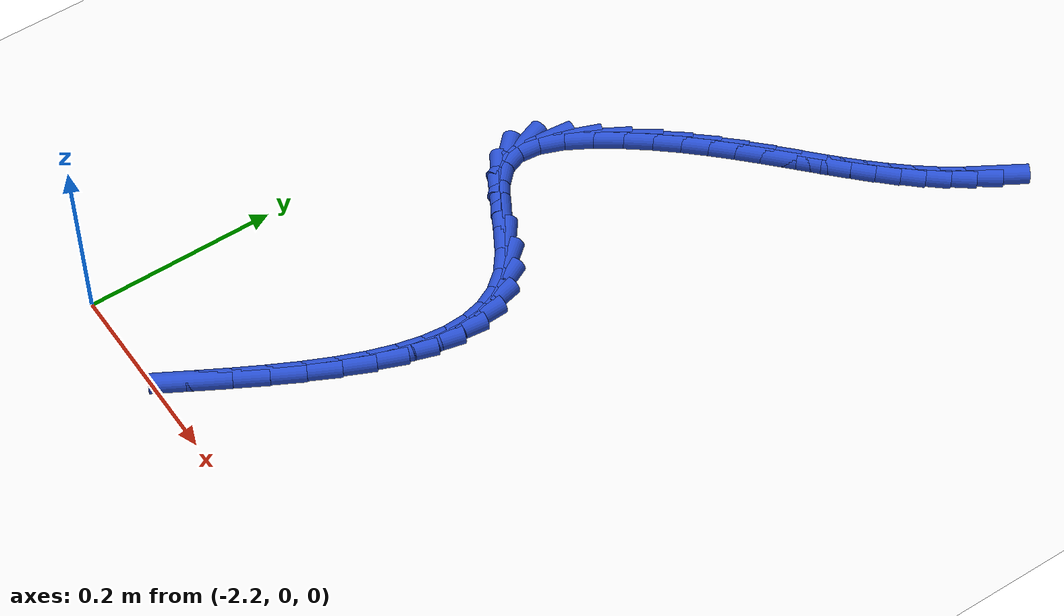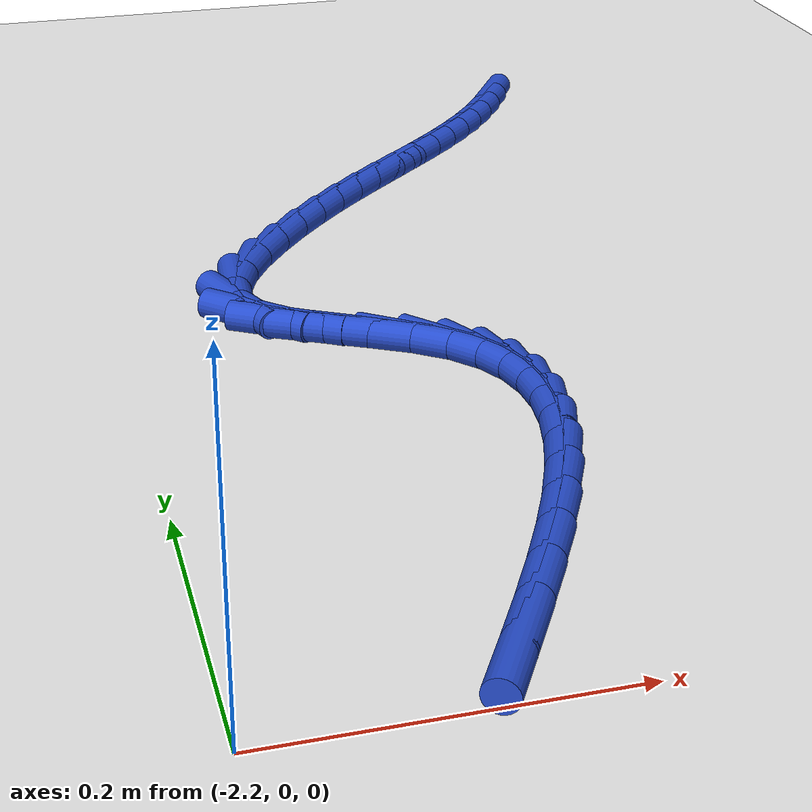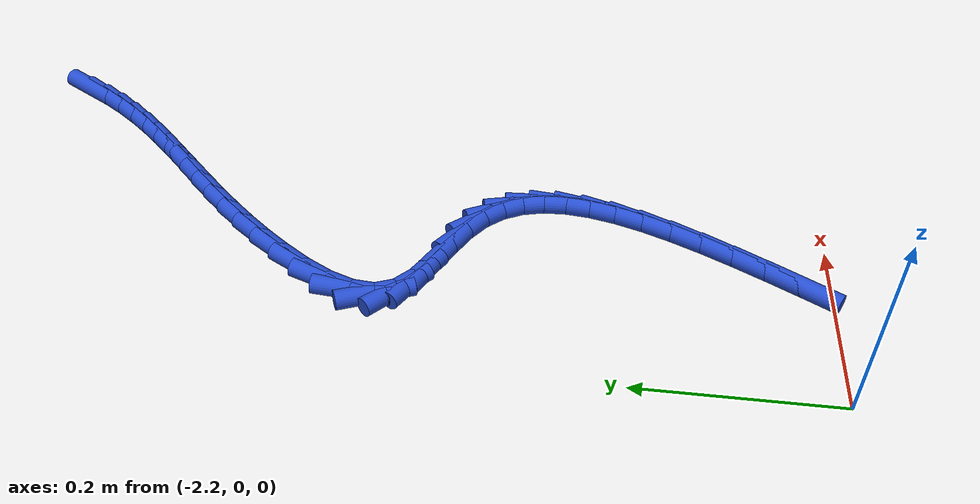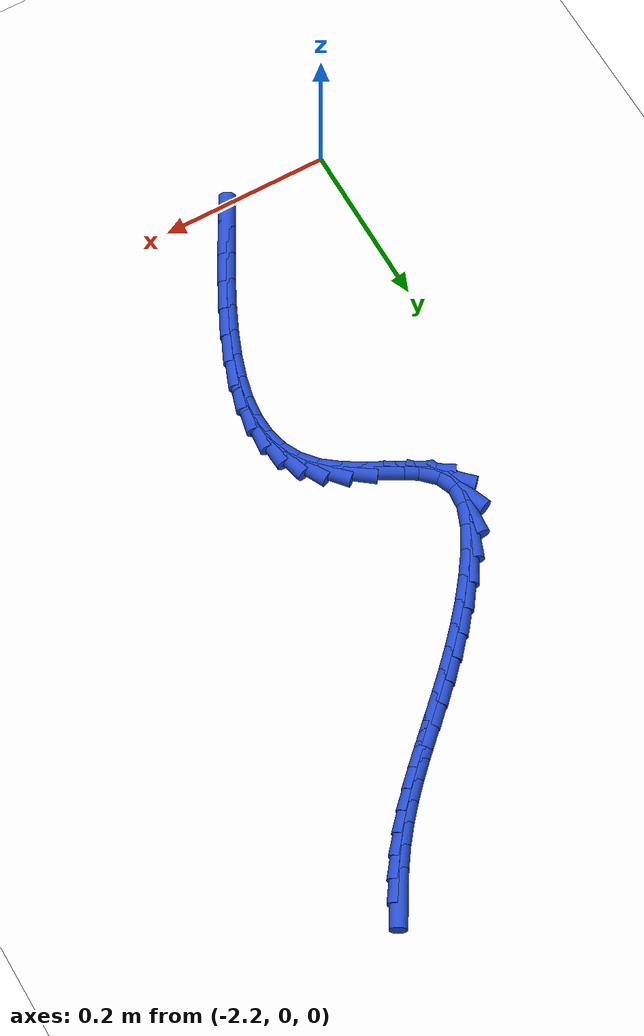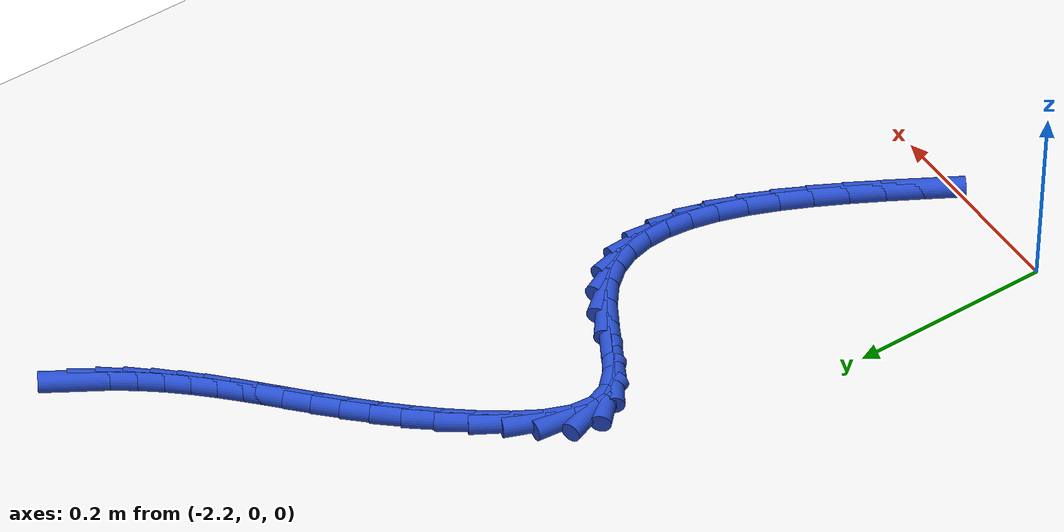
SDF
<sdf version="1.6">
 <world name="default">
  <model name="ground_plane">
   <static>1</static>
   <link name="link">
    <collision name="collision">
     <geometry><plane><normal>0 0 1</normal><size>100 100</size></plane></geometry>
     <surface><friction><ode><mu>100</mu><mu2>50</mu2></ode></friction></surface>
    </collision>
    <visual name="visual">
     <cast_shadows>0</cast_shadows>
     <geometry><plane><normal>0 0 1</normal><size>100 100</size></plane></geometry>
     <material>
      <script><uri>file://media/materials/scripts/gazebo.material</uri><name>Gazebo/WhiteGlow</name></script>
     </material>
    </visual>
   </link>
  </model>
  <model name="line">
   <link name="link_108">
    <pose>-1.8316565989515088 0.8165789625388601 0.01 0 1.57 1.0314010881256435</pose>
    <collision name="collision">
     <geometry><cylinder><radius>0.01</radius><length>0.08</length></cylinder></geometry>
    </collision>
    <visual name="visual">
     <material>
      <script><name>Gazebo/Blue</name><uri>file://media/materials/scripts/gazebo.material</uri></script>
     </material>
     <geometry><cylinder><radius>0.01</radius><length>0.08</length></cylinder></geometry>
    </visual>
   </link>
   <link name="link_109">
    <pose>-1.8453071118766358 0.7937751975808975 0.01 0 1.57 0.9664999247750493</pose>
    <collision name="collision">
     <geometry><cylinder><radius>0.01</radius><length>0.08</length></cylinder></geometry>
    </collision>
    <visual name="visual">
     <material>
      <script><name>Gazebo/Blue</name><uri>file://media/materials/scripts/gazebo.material</uri></script>
     </material>
     <geometry><cylinder><radius>0.01</radius><length>0.08</length></cylinder></geometry>
    </visual>
   </link>
   <link name="link_110">
    <pose>-1.8599519620373803 0.7725650015657354 0.01 0 1.57 0.9077729633526451</pose>
    <collision name="collision">
     <geometry><cylinder><radius>0.01</radius><length>0.08</length></cylinder></geometry>
    </collision>
    <visual name="visual">
     <material>
      <script><name>Gazebo/Blue</name><uri>file://media/materials/scripts/gazebo.material</uri></script>
     </material>
     <geometry><cylinder><radius>0.01</radius><length>0.08</length></cylinder></geometry>
    </visual>
   </link>
   <link name="link_111">
    <pose>-1.8754871113538873 0.7526726461141595 0.01 0 1.57 0.8571743927361047</pose>
    <collision name="collision">
     <geometry><cylinder><radius>0.01</radius><length>0.08</length></cylinder></geometry>
    </collision>
    <visual name="visual">
     <material>
      <script><name>Gazebo/Blue</name><uri>file://media/materials/scripts/gazebo.material</uri></script>
     </material>
     <geometry><cylinder><radius>0.01</radius><length>0.08</length></cylinder></geometry>
    </visual>
   </link>
   <link name="link_112">
    <pose>-1.8918085217462997 0.7338224028469552 0.01 0 1.57 0.8161750840079137</pose>
    <collision name="collision">
     <geometry><cylinder><radius>0.01</radius><length>0.08</length></cylinder></geometry>
    </collision>
    <visual name="visual">
     <material>
      <script><name>Gazebo/Blue</name><uri>file://media/materials/scripts/gazebo.material</uri></script>
     </material>
     <geometry><cylinder><radius>0.01</radius><length>0.08</length></cylinder></geometry>
    </visual>
   </link>
   <link name="link_113">
    <pose>-1.9088121551347625 0.7157385433849085 0.01 0 1.57 0.785721851352477</pose>
    <collision name="collision">
     <geometry><cylinder><radius>0.01</radius><length>0.08</length></cylinder></geometry>
    </collision>
    <visual name="visual">
     <material>
      <script><name>Gazebo/Blue</name><uri>file://media/materials/scripts/gazebo.material</uri></script>
     </material>
     <geometry><cylinder><radius>0.01</radius><length>0.08</length></cylinder></geometry>
    </visual>
   </link>
   <link name="link_114">
    <pose>-1.9263939734394189 0.698145339348805 0.01 0 1.57 0.7662752613122424</pose>
    <collision name="collision">
     <geometry><cylinder><radius>0.01</radius><length>0.08</length></cylinder></geometry>
    </collision>
    <visual name="visual">
     <material>
      <script><name>Gazebo/Blue</name><uri>file://media/materials/scripts/gazebo.material</uri></script>
     </material>
     <geometry><cylinder><radius>0.01</radius><length>0.08</length></cylinder></geometry>
    </visual>
   </link>
   <link name="link_115">
    <pose>-1.944449938580414 0.6807670623594304 0.01 0 1.57 0.7578854813838091</pose>
    <collision name="collision">
     <geometry><cylinder><radius>0.01</radius><length>0.08</length></cylinder></geometry>
    </collision>
    <visual name="visual">
     <material>
      <script><name>Gazebo/Blue</name><uri>file://media/materials/scripts/gazebo.material</uri></script>
     </material>
     <geometry><cylinder><radius>0.01</radius><length>0.08</length></cylinder></geometry>
    </visual>
   </link>
   <link name="link_116">
    <pose>-1.962876012477891 0.6633279840375703 0.01 0 1.57 0.760270658434729</pose>
    <collision name="collision">
     <geometry><cylinder><radius>0.01</radius><length>0.08</length></cylinder></geometry>
    </collision>
    <visual name="visual">
     <material>
      <script><name>Gazebo/Blue</name><uri>file://media/materials/scripts/gazebo.material</uri></script>
     </material>
     <geometry><cylinder><radius>0.01</radius><length>0.08</length></cylinder></geometry>
    </visual>
   </link>
   <link name="link_117">
    <pose>-1.9815681570519943 0.6455523760040108 0.01 0 1.57 0.772877725785321</pose>
    <collision name="collision">
     <geometry><cylinder><radius>0.01</radius><length>0.08</length></cylinder></geometry>
    </collision>
    <visual name="visual">
     <material>
      <script><name>Gazebo/Blue</name><uri>file://media/materials/scripts/gazebo.material</uri></script>
     </material>
     <geometry><cylinder><radius>0.01</radius><length>0.08</length></cylinder></geometry>
    </visual>
   </link>
   <link name="link_118">
    <pose>-2.000422334222868 0.627164509879537 0.01 0 1.57 0.7949213036876996</pose>
    <collision name="collision">
     <geometry><cylinder><radius>0.01</radius><length>0.08</length></cylinder></geometry>
    </collision>
    <visual name="visual">
     <material>
      <script><name>Gazebo/Blue</name><uri>file://media/materials/scripts/gazebo.material</uri></script>
     </material>
     <geometry><cylinder><radius>0.01</radius><length>0.08</length></cylinder></geometry>
    </visual>
   </link>
   <link name="link_119">
    <pose>-2.0193345059106567 0.6078886572849349 0.01 0 1.57 0.825407623657869</pose>
    <collision name="collision">
     <geometry><cylinder><radius>0.01</radius><length>0.08</length></cylinder></geometry>
    </collision>
    <visual name="visual">
     <material>
      <script><name>Gazebo/Blue</name><uri>file://media/materials/scripts/gazebo.material</uri></script>
     </material>
     <geometry><cylinder><radius>0.01</radius><length>0.08</length></cylinder></geometry>
    </visual>
   </link>
   <link name="link_120">
    <pose>-2.0382006340355034 0.5874490898409898 0.01 0 1.57 0.8631560754365122</pose>
    <collision name="collision">
     <geometry><cylinder><radius>0.01</radius><length>0.08</length></cylinder></geometry>
    </collision>
    <visual name="visual">
     <material>
      <script><name>Gazebo/Blue</name><uri>file://media/materials/scripts/gazebo.material</uri></script>
     </material>
     <geometry><cylinder><radius>0.01</radius><length>0.08</length></cylinder></geometry>
    </visual>
   </link>
   <link name="link_121">
    <pose>-2.0569166805175527 0.5655700791684878 0.01 0 1.57 0.9068319498530805</pose>
    <collision name="collision">
     <geometry><cylinder><radius>0.01</radius><length>0.08</length></cylinder></geometry>
    </collision>
    <visual name="visual">
     <material>
      <script><name>Gazebo/Blue</name><uri>file://media/materials/scripts/gazebo.material</uri></script>
     </material>
     <geometry><cylinder><radius>0.01</radius><length>0.08</length></cylinder></geometry>
    </visual>
   </link>
   <link name="link_122">
    <pose>-2.0753785501475672 0.5419759368120254 0.01 0 1.57 0.9609091247027255</pose>
    <collision name="collision">
     <geometry><cylinder><radius>0.01</radius><length>0.08</length></cylinder></geometry>
    </collision>
    <visual name="visual">
     <material>
      <script><name>Gazebo/Blue</name><uri>file://media/materials/scripts/gazebo.material</uri></script>
     </material>
     <geometry><cylinder><radius>0.01</radius><length>0.08</length></cylinder></geometry>
    </visual>
   </link>
   <link name="link_123">
    <pose>-2.0930403183587614 0.5166997385857761 0.01 0 1.57 1.0509319826366028</pose>
    <collision name="collision">
     <geometry><cylinder><radius>0.01</radius><length>0.08</length></cylinder></geometry>
    </collision>
    <visual name="visual">
     <material>
      <script><name>Gazebo/Blue</name><uri>file://media/materials/scripts/gazebo.material</uri></script>
     </material>
     <geometry><cylinder><radius>0.01</radius><length>0.08</length></cylinder></geometry>
    </visual>
   </link>
   <link name="link_124">
    <pose>-2.1078489605845268 0.4908277692468538 0.01 0 1.57 1.2068945272847194</pose>
    <collision name="collision">
     <geometry><cylinder><radius>0.01</radius><length>0.08</length></cylinder></geometry>
    </collision>
    <visual name="visual">
     <material>
      <script><name>Gazebo/Blue</name><uri>file://media/materials/scripts/gazebo.material</uri></script>
     </material>
     <geometry><cylinder><radius>0.01</radius><length>0.08</length></cylinder></geometry>
    </visual>
   </link>
   <link name="link_125">
    <pose>-2.117430390281946 0.4656706817726154 0.01 0 1.57 1.4854014942318956</pose>
    <collision name="collision">
     <geometry><cylinder><radius>0.01</radius><length>0.08</length></cylinder></geometry>
    </collision>
    <visual name="visual">
     <material>
      <script><name>Gazebo/Blue</name><uri>file://media/materials/scripts/gazebo.material</uri></script>
     </material>
     <geometry><cylinder><radius>0.01</radius><length>0.08</length></cylinder></geometry>
    </visual>
   </link>
   <link name="link_126">
    <pose>-2.1194105209081004 0.4425391291404194 0.01 0 1.57 -1.1946430958769252</pose>
    <collision name="collision">
     <geometry><cylinder><radius>0.01</radius><length>0.08</length></cylinder></geometry>
    </collision>
    <visual name="visual">
     <material>
      <script><name>Gazebo/Blue</name><uri>file://media/materials/scripts/gazebo.material</uri></script>
     </material>
     <geometry><cylinder><radius>0.01</radius><length>0.08</length></cylinder></geometry>
    </visual>
   </link>
   <link name="link_127">
    <pose>-2.111565539374166 0.4226763595229945 0.01 0 1.57 -0.7741351821345922</pose>
    <collision name="collision">
     <geometry><cylinder><radius>0.01</radius><length>0.08</length></cylinder></geometry>
    </collision>
    <visual name="visual">
     <material>
      <script><name>Gazebo/Blue</name><uri>file://media/materials/scripts/gazebo.material</uri></script>
     </material>
     <geometry><cylinder><radius>0.01</radius><length>0.08</length></cylinder></geometry>
    </visual>
   </link>
   <link name="link_128">
    <pose>-2.094546268368621 0.40603620997175344 0.01 0 1.57 -0.5671346820856457</pose>
    <collision name="collision">
     <geometry><cylinder><radius>0.01</radius><length>0.08</length></cylinder></geometry>
    </collision>
    <visual name="visual">
     <material>
      <script><name>Gazebo/Blue</name><uri>file://media/materials/scripts/gazebo.material</uri></script>
     </material>
     <geometry><cylinder><radius>0.01</radius><length>0.08</length></cylinder></geometry>
    </visual>
   </link>
   <link name="link_129">
    <pose>-2.0715879436484395 0.39141328513068413 0.01 0 1.57 -0.4964799119340013</pose>
    <collision name="collision">
     <geometry><cylinder><radius>0.01</radius><length>0.08</length></cylinder></geometry>
    </collision>
    <visual name="visual">
     <material>
      <script><name>Gazebo/Blue</name><uri>file://media/materials/scripts/gazebo.material</uri></script>
     </material>
     <geometry><cylinder><radius>0.01</radius><length>0.08</length></cylinder></geometry>
    </visual>
   </link>
   <link name="link_130">
    <pose>-2.0460178237048305 0.37756091306262524 0.01 0 1.57 -0.5229542454959518</pose>
    <collision name="collision">
     <geometry><cylinder><radius>0.01</radius><length>0.08</length></cylinder></geometry>
    </collision>
    <visual name="visual">
     <material>
      <script><name>Gazebo/Blue</name><uri>file://media/materials/scripts/gazebo.material</uri></script>
     </material>
     <geometry><cylinder><radius>0.01</radius><length>0.08</length></cylinder></geometry>
    </visual>
   </link>
   <link name="link_131">
    <pose>-2.021163167029001 0.3632324218304154 0.01 0 1.57 -0.6546857424450896</pose>
    <collision name="collision">
     <geometry><cylinder><radius>0.01</radius><length>0.08</length></cylinder></geometry>
    </collision>
    <visual name="visual">
     <material>
      <script><name>Gazebo/Blue</name><uri>file://media/materials/scripts/gazebo.material</uri></script>
     </material>
     <geometry><cylinder><radius>0.01</radius><length>0.08</length></cylinder></geometry>
    </visual>
   </link>
   <link name="link_132">
    <pose>-2.0002854931750567 0.34720620645195166 0.01 0 1.57 -0.8716137062872118</pose>
    <collision name="collision">
     <geometry><cylinder><radius>0.01</radius><length>0.08</length></cylinder></geometry>
    </collision>
    <visual name="visual">
     <material>
      <script><name>Gazebo/Blue</name><uri>file://media/materials/scripts/gazebo.material</uri></script>
     </material>
     <geometry><cylinder><radius>0.01</radius><length>0.08</length></cylinder></geometry>
    </visual>
   </link>
   <link name="link_133">
    <pose>-1.9849108110132525 0.3289224306051084 0.01 0 1.57 -1.1063197440170132</pose>
    <collision name="collision">
     <geometry><cylinder><radius>0.01</radius><length>0.08</length></cylinder></geometry>
    </collision>
    <visual name="visual">
     <material>
      <script><name>Gazebo/Blue</name><uri>file://media/materials/scripts/gazebo.material</uri></script>
     </material>
     <geometry><cylinder><radius>0.01</radius><length>0.08</length></cylinder></geometry>
    </visual>
   </link>
   <link name="link_134">
    <pose>-1.9746955369743215 0.30853415342551654 0.01 0 1.57 -1.3293674857315725</pose>
    <collision name="collision">
     <geometry><cylinder><radius>0.01</radius><length>0.08</length></cylinder></geometry>
    </collision>
    <visual name="visual">
     <material>
      <script><name>Gazebo/Blue</name><uri>file://media/materials/scripts/gazebo.material</uri></script>
     </material>
     <geometry><cylinder><radius>0.01</radius><length>0.08</length></cylinder></geometry>
    </visual>
   </link>
   <link name="link_135">
    <pose>-1.969203485636256 0.2862297441189611 0.01 0 1.57 -1.5206965817446931</pose>
    <collision name="collision">
     <geometry><cylinder><radius>0.01</radius><length>0.08</length></cylinder></geometry>
    </collision>
    <visual name="visual">
     <material>
      <script><name>Gazebo/Blue</name><uri>file://media/materials/scripts/gazebo.material</uri></script>
     </material>
     <geometry><cylinder><radius>0.01</radius><length>0.08</length></cylinder></geometry>
    </visual>
   </link>
   <link name="link_136">
    <pose>-1.967998471577049 0.26219757189122705 0.01 0 1.57 1.4676952412201076</pose>
    <collision name="collision">
     <geometry><cylinder><radius>0.01</radius><length>0.08</length></cylinder></geometry>
    </collision>
    <visual name="visual">
     <material>
      <script><name>Gazebo/Blue</name><uri>file://media/materials/scripts/gazebo.material</uri></script>
     </material>
     <geometry><cylinder><radius>0.01</radius><length>0.08</length></cylinder></geometry>
    </visual>
   </link>
   <link name="link_137">
    <pose>-1.9706443093746933 0.23662600594809943 0.01 0 1.57 1.3493786051020578</pose>
    <collision name="collision">
     <geometry><cylinder><radius>0.01</radius><length>0.08</length></cylinder></geometry>
    </collision>
    <visual name="visual">
     <material>
      <script><name>Gazebo/Blue</name><uri>file://media/materials/scripts/gazebo.material</uri></script>
     </material>
     <geometry><cylinder><radius>0.01</radius><length>0.08</length></cylinder></geometry>
    </visual>
   </link>
   <link name="link_138">
    <pose>-1.9767048136071825 0.20970341549536303 0.01 0 1.57 1.259424229277959</pose>
    <collision name="collision">
     <geometry><cylinder><radius>0.01</radius><length>0.08</length></cylinder></geometry>
    </collision>
    <visual name="visual">
     <material>
      <script><name>Gazebo/Blue</name><uri>file://media/materials/scripts/gazebo.material</uri></script>
     </material>
     <geometry><cylinder><radius>0.01</radius><length>0.08</length></cylinder></geometry>
    </visual>
   </link>
   <link name="link_139">
    <pose>-1.9857437988525095 0.18161816973880301 0.01 0 1.57 1.191552321382261</pose>
    <collision name="collision">
     <geometry><cylinder><radius>0.01</radius><length>0.08</length></cylinder></geometry>
    </collision>
    <visual name="visual">
     <material>
      <script><name>Gazebo/Blue</name><uri>file://media/materials/scripts/gazebo.material</uri></script>
     </material>
     <geometry><cylinder><radius>0.01</radius><length>0.08</length></cylinder></geometry>
    </visual>
   </link>
   <link name="link_140">
    <pose>-1.997325079688666 0.15255863788420454 0.01 0 1.57 1.1408062719250143</pose>
    <collision name="collision">
     <geometry><cylinder><radius>0.01</radius><length>0.08</length></cylinder></geometry>
    </collision>
    <visual name="visual">
     <material>
      <script><name>Gazebo/Blue</name><uri>file://media/materials/scripts/gazebo.material</uri></script>
     </material>
     <geometry><cylinder><radius>0.01</radius><length>0.08</length></cylinder></geometry>
    </visual>
   </link>
   <link name="link_141">
    <pose>-2.0110124706936454 0.12271318913735167 0.01 0 1.57 1.1035859930658105</pose>
    <collision name="collision">
     <geometry><cylinder><radius>0.01</radius><length>0.08</length></cylinder></geometry>
    </collision>
    <visual name="visual">
     <material>
      <script><name>Gazebo/Blue</name><uri>file://media/materials/scripts/gazebo.material</uri></script>
     </material>
     <geometry><cylinder><radius>0.01</radius><length>0.08</length></cylinder></geometry>
    </visual>
   </link>
   <link name="link_142">
    <pose>-2.0263697864454415 0.09227019270402989 0.01 0 1.57 1.077399234463333</pose>
    <collision name="collision">
     <geometry><cylinder><radius>0.01</radius><length>0.08</length></cylinder></geometry>
    </collision>
    <visual name="visual">
     <material>
      <script><name>Gazebo/Blue</name><uri>file://media/materials/scripts/gazebo.material</uri></script>
     </material>
     <geometry><cylinder><radius>0.01</radius><length>0.08</length></cylinder></geometry>
    </visual>
   </link>
   <link name="link_143">
    <pose>-2.0429608415220466 0.06141801779002401 0.01 0 1.57 1.0606084700622458</pose>
    <collision name="collision">
     <geometry><cylinder><radius>0.01</radius><length>0.08</length></cylinder></geometry>
    </collision>
    <visual name="visual">
     <material>
      <script><name>Gazebo/Blue</name><uri>file://media/materials/scripts/gazebo.material</uri></script>
     </material>
     <geometry><cylinder><radius>0.01</radius><length>0.08</length></cylinder></geometry>
    </visual>
   </link>
   <link name="link_144">
    <pose>-2.0603494505014535 0.030345033601119085 0.01 0 1.57 1.0522454056369273</pose>
    <collision name="collision">
     <geometry><cylinder><radius>0.01</radius><length>0.08</length></cylinder></geometry>
    </collision>
    <visual name="visual">
     <material>
      <script><name>Gazebo/Blue</name><uri>file://media/materials/scripts/gazebo.material</uri></script>
     </material>
     <geometry><cylinder><radius>0.01</radius><length>0.08</length></cylinder></geometry>
    </visual>
   </link>
  </model>
 </world>
</sdf>
